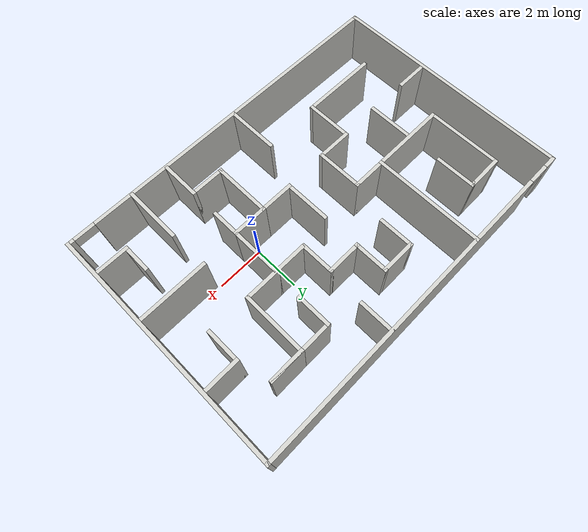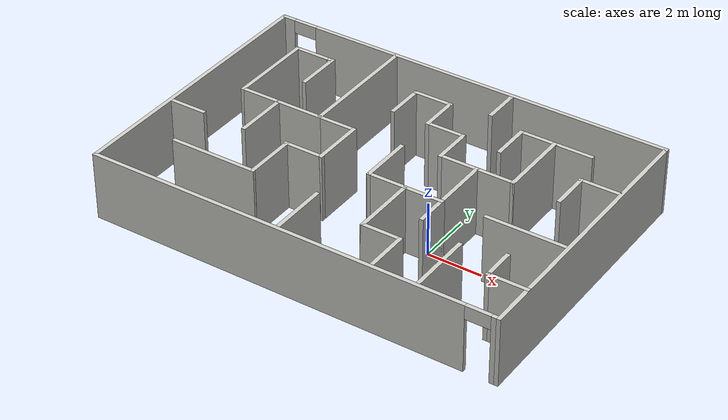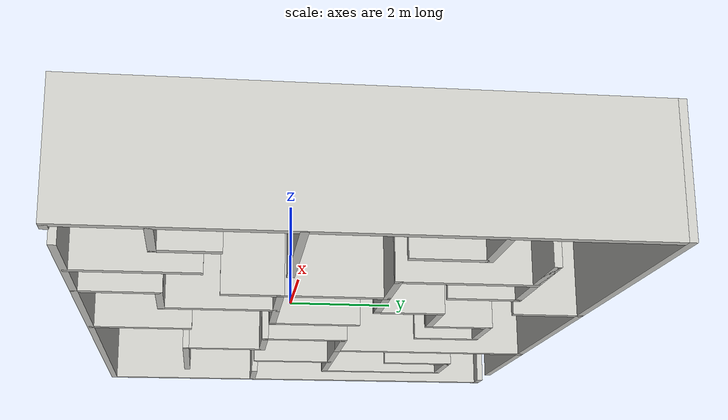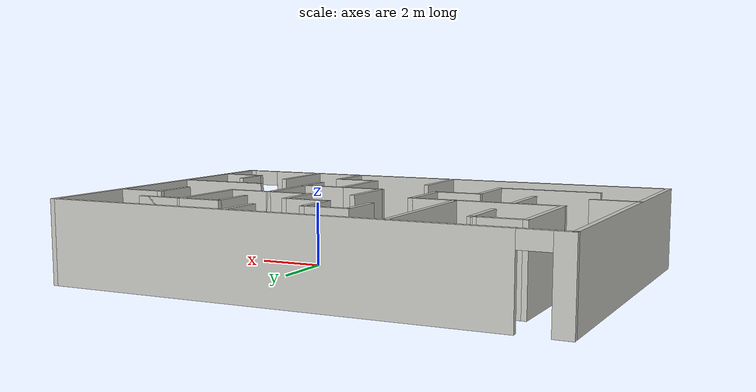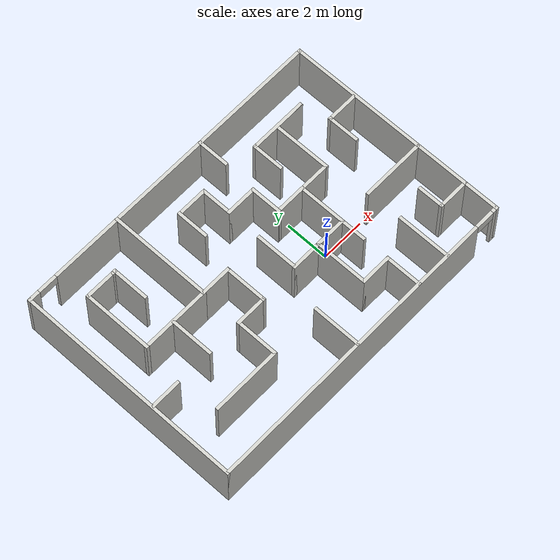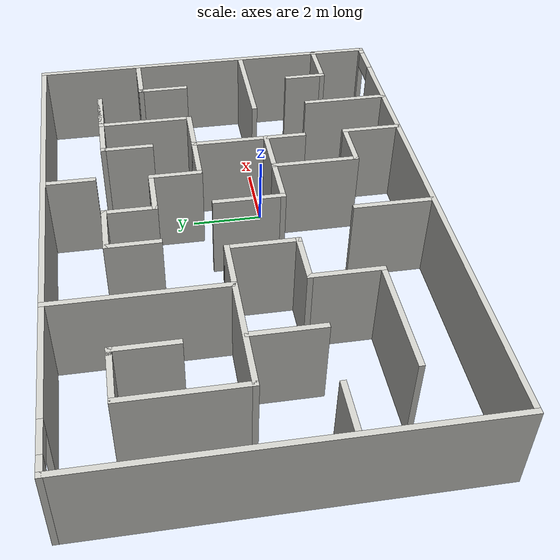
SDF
<?xml version='1.0'?>
<sdf version='1.7'>
  <model name='test_gazebo_worlds'>
    <pose>-2.43908 0.979391 0 0 -0 0</pose>
    <link name='Wall_21'>
      <collision name='Wall_21_Collision'>
        <geometry>
          <box>
            <size>4.75 0.15 2.5</size>
          </box>
        </geometry>
        <pose>0 0 1.25 0 -0 0</pose>
      </collision>
      <visual name='Wall_21_Visual'>
        <pose>0 0 1.25 0 -0 0</pose>
        <geometry>
          <box>
            <size>4.75 0.15 2.5</size>
          </box>
        </geometry>
        <material>
          <script>
            <uri>file://media/materials/scripts/gazebo.material</uri>
            <name>Gazebo/CeilingTiled</name>
          </script>
          <ambient>0.435294 0.796078 0.67451 1</ambient>
        </material>
        <meta>
          <layer>0</layer>
        </meta>
      </visual>
      <pose>-2.81689 2.87409 0 0 -0 -1.5708</pose>
    </link>
    <link name='Wall_28'>
      <collision name='Wall_28_Collision'>
        <geometry>
          <box>
            <size>3.25 0.15 2.5</size>
          </box>
        </geometry>
        <pose>0 0 1.25 0 -0 0</pose>
      </collision>
      <visual name='Wall_28_Visual'>
        <pose>0 0 1.25 0 -0 0</pose>
        <geometry>
          <box>
            <size>3.25 0.15 2.5</size>
          </box>
        </geometry>
        <material>
          <script>
            <uri>file://media/materials/scripts/gazebo.material</uri>
            <name>Gazebo/CeilingTiled</name>
          </script>
          <ambient>0.435294 0.796078 0.67451 1</ambient>
        </material>
        <meta>
          <layer>0</layer>
        </meta>
      </visual>
      <pose>-4.36689 0.574087 0 0 -0 3.14159</pose>
    </link>
    <link name='Wall_30'>
      <collision name='Wall_30_Collision'>
        <geometry>
          <box>
            <size>3.25 0.15 2.5</size>
          </box>
        </geometry>
        <pose>0 0 1.25 0 -0 0</pose>
      </collision>
      <visual name='Wall_30_Visual'>
        <pose>0 0 1.25 0 -0 0</pose>
        <geometry>
          <box>
            <size>3.25 0.15 2.5</size>
          </box>
        </geometry>
        <material>
          <script>
            <uri>file://media/materials/scripts/gazebo.material</uri>
            <name>Gazebo/CeilingTiled</name>
          </script>
          <ambient>0.435294 0.796078 0.67451 1</ambient>
        </material>
        <meta>
          <layer>0</layer>
        </meta>
      </visual>
      <pose>-5.91689 2.12409 0 0 -0 1.5708</pose>
    </link>
    <link name='Wall_31'>
      <collision name='Wall_31_Collision'>
        <geometry>
          <box>
            <size>1.5 0.15 2.5</size>
          </box>
        </geometry>
        <pose>0 0 1.25 0 -0 0</pose>
      </collision>
      <visual name='Wall_31_Visual'>
        <pose>0 0 1.25 0 -0 0</pose>
        <geometry>
          <box>
            <size>1.5 0.15 2.5</size>
          </box>
        </geometry>
        <material>
          <script>
            <uri>file://media/materials/scripts/gazebo.material</uri>
            <name>Gazebo/CeilingTiled</name>
          </script>
          <ambient>0.435294 0.796078 0.67451 1</ambient>
        </material>
        <meta>
          <layer>0</layer>
        </meta>
      </visual>
      <pose>-5.24189 3.67409 0 0 -0 0</pose>
    </link>
    <link name='Wall_32'>
      <collision name='Wall_32_Collision'>
        <geometry>
          <box>
            <size>0.25 0.15 2.5</size>
          </box>
        </geometry>
        <pose>0 0 1.25 0 -0 0</pose>
      </collision>
      <visual name='Wall_32_Visual'>
        <pose>0 0 1.25 0 -0 0</pose>
        <geometry>
          <box>
            <size>0.25 0.15 2.5</size>
          </box>
        </geometry>
        <material>
          <script>
            <uri>file://media/materials/scripts/gazebo.material</uri>
            <name>Gazebo/CeilingTiled</name>
          </script>
          <ambient>0.435294 0.796078 0.67451 1</ambient>
        </material>
        <meta>
          <layer>0</layer>
        </meta>
      </visual>
      <pose>-4.51689 3.67409 0 0 -0 0</pose>
    </link>
    <link name='Wall_33'>
      <collision name='Wall_33_Collision'>
        <geometry>
          <box>
            <size>1.75 0.15 2.5</size>
          </box>
        </geometry>
        <pose>0 0 1.25 0 -0 0</pose>
      </collision>
      <visual name='Wall_33_Visual'>
        <pose>0 0 1.25 0 -0 0</pose>
        <geometry>
          <box>
            <size>1.75 0.15 2.5</size>
          </box>
        </geometry>
        <material>
          <script>
            <uri>file://media/materials/scripts/gazebo.material</uri>
            <name>Gazebo/CeilingTiled</name>
          </script>
          <ambient>0.435294 0.796078 0.67451 1</ambient>
        </material>
        <meta>
          <layer>0</layer>
        </meta>
      </visual>
      <pose>-4.46689 2.87409 0 0 -0 -1.5708</pose>
    </link>
    <link name='Wall_35'>
      <collision name='Wall_35_Collision'>
        <geometry>
          <box>
            <size>2 0.15 2.5</size>
          </box>
        </geometry>
        <pose>0 0 1.25 0 -0 0</pose>
      </collision>
      <visual name='Wall_35_Visual'>
        <pose>0 0 1.25 0 -0 0</pose>
        <geometry>
          <box>
            <size>2 0.15 2.5</size>
          </box>
        </geometry>
        <material>
          <script>
            <uri>file://media/materials/scripts/gazebo.material</uri>
            <name>Gazebo/CeilingTiled</name>
          </script>
          <ambient>0.435294 0.796078 0.67451 1</ambient>
        </material>
        <meta>
          <layer>0</layer>
        </meta>
      </visual>
      <pose>-4.47845 -0.40327 0 0 -0 -1.5708</pose>
    </link>
    <link name='Wall_37'>
      <collision name='Wall_37_Collision'>
        <geometry>
          <box>
            <size>1.5 0.15 2.5</size>
          </box>
        </geometry>
        <pose>0 0 1.25 0 -0 0</pose>
      </collision>
      <visual name='Wall_37_Visual'>
        <pose>0 0 1.25 0 -0 0</pose>
        <geometry>
          <box>
            <size>1.5 0.15 2.5</size>
          </box>
        </geometry>
        <material>
          <script>
            <uri>file://media/materials/scripts/gazebo.material</uri>
            <name>Gazebo/CeilingTiled</name>
          </script>
          <ambient>0.435294 0.796078 0.67451 1</ambient>
        </material>
        <meta>
          <layer>0</layer>
        </meta>
      </visual>
      <pose>-6.8717 -1.30845 0 0 -0 0</pose>
    </link>
    <link name='Wall_39'>
      <collision name='Wall_39_Collision'>
        <geometry>
          <box>
            <size>1.5 0.15 2.5</size>
          </box>
        </geometry>
        <pose>0 0 1.25 0 -0 0</pose>
      </collision>
      <visual name='Wall_39_Visual'>
        <pose>0 0 1.25 0 -0 0</pose>
        <geometry>
          <box>
            <size>1.5 0.15 2.5</size>
          </box>
        </geometry>
        <material>
          <script>
            <uri>file://media/materials/scripts/gazebo.material</uri>
            <name>Gazebo/CeilingTiled</name>
          </script>
          <ambient>0.435294 0.796078 0.67451 1</ambient>
        </material>
        <meta>
          <layer>0</layer>
        </meta>
      </visual>
      <pose>-0.993049 2.90802 0 0 -0 1.5708</pose>
    </link>
    <link name='Wall_4'>
      <collision name='Wall_4_Collision'>
        <geometry>
          <box>
            <size>10.5 0.15 2.5</size>
          </box>
        </geometry>
        <pose>0 0 1.25 0 -0 0</pose>
      </collision>
      <visual name='Wall_4_Visual'>
        <pose>0 0 1.25 0 -0 0</pose>
        <geometry>
          <box>
            <size>10.5 0.15 2.5</size>
          </box>
        </geometry>
        <material>
          <script>
            <uri>file://media/materials/scripts/gazebo.material</uri>
            <name>Gazebo/CeilingTiled</name>
          </script>
          <ambient>0.435294 0.796078 0.67451 1</ambient>
        </material>
        <meta>
          <layer>0</layer>
        </meta>
      </visual>
      <pose>-7.55 -0 0 0 -0 -1.5708</pose>
    </link>
    <link name='Wall_40'>
      <collision name='Wall_40_Collision'>
        <geometry>
          <box>
            <size>1.5 0.15 2.5</size>
          </box>
        </geometry>
        <pose>0 0 1.25 0 -0 0</pose>
      </collision>
      <visual name='Wall_40_Visual'>
        <pose>0 0 1.25 0 -0 0</pose>
        <geometry>
          <box>
            <size>1.5 0.15 2.5</size>
          </box>
        </geometry>
        <material>
          <script>
            <uri>file://media/materials/scripts/gazebo.material</uri>
            <name>Gazebo/CeilingTiled</name>
          </script>
          <ambient>0.435294 0.796078 0.67451 1</ambient>
        </material>
        <meta>
          <layer>0</layer>
        </meta>
      </visual>
      <pose>-0.318049 3.58302 0 0 -0 0</pose>
    </link>
    <link name='Wall_41'>
      <collision name='Wall_41_Collision'>
        <geometry>
          <box>
            <size>1.5 0.15 2.5</size>
          </box>
        </geometry>
        <pose>0 0 1.25 0 -0 0</pose>
      </collision>
      <visual name='Wall_41_Visual'>
        <pose>0 0 1.25 0 -0 0</pose>
        <geometry>
          <box>
            <size>1.5 0.15 2.5</size>
          </box>
        </geometry>
        <material>
          <script>
            <uri>file://media/materials/scripts/gazebo.material</uri>
            <name>Gazebo/CeilingTiled</name>
          </script>
          <ambient>0.435294 0.796078 0.67451 1</ambient>
        </material>
        <meta>
          <layer>0</layer>
        </meta>
      </visual>
      <pose>0.356951 2.90802 0 0 -0 -1.5708</pose>
    </link>
    <link name='Wall_42'>
      <collision name='Wall_42_Collision'>
        <geometry>
          <box>
            <size>1.5 0.15 2.5</size>
          </box>
        </geometry>
        <pose>0 0 1.25 0 -0 0</pose>
      </collision>
      <visual name='Wall_42_Visual'>
        <pose>0 0 1.25 0 -0 0</pose>
        <geometry>
          <box>
            <size>1.5 0.15 2.5</size>
          </box>
        </geometry>
        <material>
          <script>
            <uri>file://media/materials/scripts/gazebo.material</uri>
            <name>Gazebo/CeilingTiled</name>
          </script>
          <ambient>0.435294 0.796078 0.67451 1</ambient>
        </material>
        <meta>
          <layer>0</layer>
        </meta>
      </visual>
      <pose>1.03195 2.23302 0 0 -0 0</pose>
    </link>
    <link name='Wall_43'>
      <collision name='Wall_43_Collision'>
        <geometry>
          <box>
            <size>1.5 0.15 2.5</size>
          </box>
        </geometry>
        <pose>0 0 1.25 0 -0 0</pose>
      </collision>
      <visual name='Wall_43_Visual'>
        <pose>0 0 1.25 0 -0 0</pose>
        <geometry>
          <box>
            <size>1.5 0.15 2.5</size>
          </box>
        </geometry>
        <material>
          <script>
            <uri>file://media/materials/scripts/gazebo.material</uri>
            <name>Gazebo/CeilingTiled</name>
          </script>
          <ambient>0.862745 0.541176 0.866667 1</ambient>
        </material>
        <meta>
          <layer>0</layer>
        </meta>
      </visual>
      <pose>1.70695 1.55802 0 0 -0 -1.5708</pose>
    </link>
    <link name='Wall_44'>
      <collision name='Wall_44_Collision'>
        <geometry>
          <box>
            <size>1.5 0.15 2.5</size>
          </box>
        </geometry>
        <pose>0 0 1.25 0 -0 0</pose>
      </collision>
      <visual name='Wall_44_Visual'>
        <pose>0 0 1.25 0 -0 0</pose>
        <geometry>
          <box>
            <size>1.5 0.15 2.5</size>
          </box>
        </geometry>
        <material>
          <script>
            <uri>file://media/materials/scripts/gazebo.material</uri>
            <name>Gazebo/CeilingTiled</name>
          </script>
          <ambient>0.862745 0.541176 0.866667 1</ambient>
        </material>
        <meta>
          <layer>0</layer>
        </meta>
      </visual>
      <pose>2.38195 0.88302 0 0 -0 0</pose>
    </link>
    <link name='Wall_45'>
      <collision name='Wall_45_Collision'>
        <geometry>
          <box>
            <size>2.25 0.15 2.5</size>
          </box>
        </geometry>
        <pose>0 0 1.25 0 -0 0</pose>
      </collision>
      <visual name='Wall_45_Visual'>
        <pose>0 0 1.25 0 -0 0</pose>
        <geometry>
          <box>
            <size>2.25 0.15 2.5</size>
          </box>
        </geometry>
        <material>
          <script>
            <uri>file://media/materials/scripts/gazebo.material</uri>
            <name>Gazebo/CeilingTiled</name>
          </script>
          <ambient>0.862745 0.541176 0.866667 1</ambient>
        </material>
        <meta>
          <layer>0</layer>
        </meta>
      </visual>
      <pose>3.05695 -0.16698 0 0 -0 -1.5708</pose>
    </link>
    <link name='Wall_46'>
      <collision name='Wall_46_Collision'>
        <geometry>
          <box>
            <size>1.5 0.15 2.5</size>
          </box>
        </geometry>
        <pose>0 0 1.25 0 -0 0</pose>
      </collision>
      <visual name='Wall_46_Visual'>
        <pose>0 0 1.25 0 -0 0</pose>
        <geometry>
          <box>
            <size>1.5 0.15 2.5</size>
          </box>
        </geometry>
        <material>
          <script>
            <uri>file://media/materials/scripts/gazebo.material</uri>
            <name>Gazebo/CeilingTiled</name>
          </script>
          <ambient>0.862745 0.541176 0.866667 1</ambient>
        </material>
        <meta>
          <layer>0</layer>
        </meta>
      </visual>
      <pose>2.38195 -1.21698 0 0 -0 3.14159</pose>
    </link>
    <link name='Wall_47'>
      <collision name='Wall_47_Collision'>
        <geometry>
          <box>
            <size>2.5 0.15 2.5</size>
          </box>
        </geometry>
        <pose>0 0 1.25 0 -0 0</pose>
      </collision>
      <visual name='Wall_47_Visual'>
        <pose>0 0 1.25 0 -0 0</pose>
        <geometry>
          <box>
            <size>2.5 0.15 2.5</size>
          </box>
        </geometry>
        <material>
          <script>
            <uri>file://media/materials/scripts/gazebo.material</uri>
            <name>Gazebo/CeilingTiled</name>
          </script>
          <ambient>0.862745 0.541176 0.866667 1</ambient>
        </material>
        <meta>
          <layer>0</layer>
        </meta>
      </visual>
      <pose>1.70695 -2.39198 0 0 -0 -1.5708</pose>
    </link>
    <link name='Wall_49'>
      <collision name='Wall_49_Collision'>
        <geometry>
          <box>
            <size>1.5 0.15 2.5</size>
          </box>
        </geometry>
        <pose>0 0 1.25 0 -0 0</pose>
      </collision>
      <visual name='Wall_49_Visual'>
        <pose>0 0 1.25 0 -0 0</pose>
        <geometry>
          <box>
            <size>1.5 0.15 2.5</size>
          </box>
        </geometry>
        <material>
          <script>
            <uri>file://media/materials/scripts/gazebo.material</uri>
            <name>Gazebo/CeilingTiled</name>
          </script>
          <ambient>0.862745 0.541176 0.866667 1</ambient>
        </material>
        <meta>
          <layer>0</layer>
        </meta>
      </visual>
      <pose>1.03195 -1.21698 0 0 -0 3.14159</pose>
    </link>
    <link name='Wall_5'>
      <pose>0 -5.175 0 0 -0 0</pose>
      <visual name='Wall_5_Visual_0'>
        <pose>-0.611206 0 1.25 0 -0 0</pose>
        <geometry>
          <box>
            <size>14.0276 0.15 2.5</size>
          </box>
        </geometry>
        <material>
          <script>
            <uri>file://media/materials/scripts/gazebo.material</uri>
            <name>Gazebo/CeilingTiled</name>
          </script>
          <ambient>0.862745 0.541176 0.866667 1</ambient>
        </material>
        <meta>
          <layer>0</layer>
        </meta>
      </visual>
      <collision name='Wall_5_Collision_0'>
        <geometry>
          <box>
            <size>14.0276 0.15 2.5</size>
          </box>
        </geometry>
        <pose>-0.611206 0 1.25 0 -0 0</pose>
      </collision>
      <visual name='Wall_5_Visual_1'>
        <pose>7.46379 0 1.25 0 -0 0</pose>
        <geometry>
          <box>
            <size>0.322412 0.15 2.5</size>
          </box>
        </geometry>
        <material>
          <script>
            <uri>file://media/materials/scripts/gazebo.material</uri>
            <name>Gazebo/CeilingTiled</name>
          </script>
          <ambient>0.862745 0.541176 0.866667 1</ambient>
        </material>
        <meta>
          <layer>0</layer>
        </meta>
      </visual>
      <collision name='Wall_5_Collision_1'>
        <geometry>
          <box>
            <size>0.322412 0.15 2.5</size>
          </box>
        </geometry>
        <pose>7.46379 0 1.25 0 -0 0</pose>
      </collision>
      <visual name='Wall_5_Visual_2'>
        <pose>6.85259 0 2.25 0 -0 0</pose>
        <geometry>
          <box>
            <size>0.9 0.15 0.5</size>
          </box>
        </geometry>
        <material>
          <script>
            <uri>file://media/materials/scripts/gazebo.material</uri>
            <name>Gazebo/CeilingTiled</name>
          </script>
          <ambient>0.862745 0.541176 0.866667 1</ambient>
        </material>
        <meta>
          <layer>0</layer>
        </meta>
      </visual>
      <collision name='Wall_5_Collision_2'>
        <geometry>
          <box>
            <size>0.9 0.15 0.5</size>
          </box>
        </geometry>
        <pose>6.85259 0 2.25 0 -0 0</pose>
      </collision>
    </link>
    <link name='Wall_50'>
      <collision name='Wall_50_Collision'>
        <geometry>
          <box>
            <size>2 0.15 2.5</size>
          </box>
        </geometry>
        <pose>0 0 1.25 0 -0 0</pose>
      </collision>
      <visual name='Wall_50_Visual'>
        <pose>0 0 1.25 0 -0 0</pose>
        <geometry>
          <box>
            <size>2 0.15 2.5</size>
          </box>
        </geometry>
        <material>
          <script>
            <uri>file://media/materials/scripts/gazebo.material</uri>
            <name>Gazebo/CeilingTiled</name>
          </script>
          <ambient>0.435294 0.796078 0.67451 1</ambient>
        </material>
        <meta>
          <layer>0</layer>
        </meta>
      </visual>
      <pose>0.356951 -0.29198 0 0 -0 1.5708</pose>
    </link>
    <link name='Wall_52'>
      <collision name='Wall_52_Collision'>
        <geometry>
          <box>
            <size>1.5 0.15 2.5</size>
          </box>
        </geometry>
        <pose>0 0 1.25 0 -0 0</pose>
      </collision>
      <visual name='Wall_52_Visual'>
        <pose>0 0 1.25 0 -0 0</pose>
        <geometry>
          <box>
            <size>1.5 0.15 2.5</size>
          </box>
        </geometry>
        <material>
          <script>
            <uri>file://media/materials/scripts/gazebo.material</uri>
            <name>Gazebo/CeilingTiled</name>
          </script>
          <ambient>0.435294 0.796078 0.67451 1</ambient>
        </material>
        <meta>
          <layer>0</layer>
        </meta>
      </visual>
      <pose>-2.14189 0.574087 0 0 -0 0</pose>
    </link>
    <link name='Wall_53'>
      <collision name='Wall_53_Collision'>
        <geometry>
          <box>
            <size>2 0.15 2.5</size>
          </box>
        </geometry>
        <pose>0 0 1.25 0 -0 0</pose>
      </collision>
      <visual name='Wall_53_Visual'>
        <pose>0 0 1.25 0 -0 0</pose>
        <geometry>
          <box>
            <size>2 0.15 2.5</size>
          </box>
        </geometry>
        <material>
          <script>
            <uri>file://media/materials/scripts/gazebo.material</uri>
            <name>Gazebo/CeilingTiled</name>
          </script>
          <ambient>0.435294 0.796078 0.67451 1</ambient>
        </material>
        <meta>
          <layer>0</layer>
        </meta>
      </visual>
      <pose>-1.46689 -0.350913 0 0 -0 -1.5708</pose>
    </link>
    <link name='Wall_54'>
      <collision name='Wall_54_Collision'>
        <geometry>
          <box>
            <size>1.5 0.15 2.5</size>
          </box>
        </geometry>
        <pose>0 0 1.25 0 -0 0</pose>
      </collision>
      <visual name='Wall_54_Visual'>
        <pose>0 0 1.25 0 -0 0</pose>
        <geometry>
          <box>
            <size>1.5 0.15 2.5</size>
          </box>
        </geometry>
        <material>
          <script>
            <uri>file://media/materials/scripts/gazebo.material</uri>
            <name>Gazebo/CeilingTiled</name>
          </script>
          <ambient>0.435294 0.796078 0.67451 1</ambient>
        </material>
        <meta>
          <layer>0</layer>
        </meta>
      </visual>
      <pose>-2.14189 -1.27591 0 0 -0 3.14159</pose>
    </link>
    <link name='Wall_55'>
      <collision name='Wall_55_Collision'>
        <geometry>
          <box>
            <size>2 0.15 2.5</size>
          </box>
        </geometry>
        <pose>0 0 1.25 0 -0 0</pose>
      </collision>
      <visual name='Wall_55_Visual'>
        <pose>0 0 1.25 0 -0 0</pose>
        <geometry>
          <box>
            <size>2 0.15 2.5</size>
          </box>
        </geometry>
        <material>
          <script>
            <uri>file://media/materials/scripts/gazebo.material</uri>
            <name>Gazebo/CeilingTiled</name>
          </script>
          <ambient>0.435294 0.796078 0.67451 1</ambient>
        </material>
        <meta>
          <layer>0</layer>
        </meta>
      </visual>
      <pose>-2.81689 -2.20091 0 0 -0 -1.5708</pose>
    </link>
    <link name='Wall_56'>
      <collision name='Wall_56_Collision'>
        <geometry>
          <box>
            <size>3.25 0.15 2.5</size>
          </box>
        </geometry>
        <pose>0 0 1.25 0 -0 0</pose>
      </collision>
      <visual name='Wall_56_Visual'>
        <pose>0 0 1.25 0 -0 0</pose>
        <geometry>
          <box>
            <size>3.25 0.15 2.5</size>
          </box>
        </geometry>
        <material>
          <script>
            <uri>file://media/materials/scripts/gazebo.material</uri>
            <name>Gazebo/CeilingTiled</name>
          </script>
          <ambient>0.435294 0.796078 0.67451 1</ambient>
        </material>
        <meta>
          <layer>0</layer>
        </meta>
      </visual>
      <pose>-4.36689 -3.12591 0 0 -0 3.14159</pose>
    </link>
    <link name='Wall_58'>
      <collision name='Wall_58_Collision'>
        <geometry>
          <box>
            <size>2.25 0.15 2.5</size>
          </box>
        </geometry>
        <pose>0 0 1.25 0 -0 0</pose>
      </collision>
      <visual name='Wall_58_Visual'>
        <pose>0 0 1.25 0 -0 0</pose>
        <geometry>
          <box>
            <size>2.25 0.15 2.5</size>
          </box>
        </geometry>
        <material>
          <script>
            <uri>file://media/materials/scripts/gazebo.material</uri>
            <name>Gazebo/CeilingTiled</name>
          </script>
          <ambient>0.862745 0.541176 0.866667 1</ambient>
        </material>
        <meta>
          <layer>0</layer>
        </meta>
      </visual>
      <pose>-0.400199 -4.08572 0 0 -0 -1.5708</pose>
    </link>
    <link name='Wall_6'>
      <collision name='Wall_6_Collision'>
        <geometry>
          <box>
            <size>10.5 0.15 2.5</size>
          </box>
        </geometry>
        <pose>0 0 1.25 0 -0 0</pose>
      </collision>
      <visual name='Wall_6_Visual'>
        <pose>0 0 1.25 0 -0 0</pose>
        <geometry>
          <box>
            <size>10.5 0.15 2.5</size>
          </box>
        </geometry>
        <material>
          <script>
            <uri>file://media/materials/scripts/gazebo.material</uri>
            <name>Gazebo/CeilingTiled</name>
          </script>
          <ambient>0.862745 0.541176 0.866667 1</ambient>
        </material>
        <meta>
          <layer>0</layer>
        </meta>
      </visual>
      <pose>7.55 -0 0 0 -0 1.5708</pose>
    </link>
    <link name='Wall_60'>
      <collision name='Wall_60_Collision'>
        <geometry>
          <box>
            <size>1.5 0.15 2.5</size>
          </box>
        </geometry>
        <pose>0 0 1.25 0 -0 0</pose>
      </collision>
      <visual name='Wall_60_Visual'>
        <pose>0 0 1.25 0 -0 0</pose>
        <geometry>
          <box>
            <size>1.5 0.15 2.5</size>
          </box>
        </geometry>
        <material>
          <script>
            <uri>file://media/materials/scripts/gazebo.material</uri>
            <name>Gazebo/CeilingTiled</name>
          </script>
          <ambient>0.435294 0.796078 0.67451 1</ambient>
        </material>
        <meta>
          <layer>0</layer>
        </meta>
      </visual>
      <pose>1.82204 4.48391 0 0 -0 -1.5708</pose>
    </link>
    <link name='Wall_62'>
      <collision name='Wall_62_Collision'>
        <geometry>
          <box>
            <size>1.5 0.15 2.5</size>
          </box>
        </geometry>
        <pose>0 0 1.25 0 -0 0</pose>
      </collision>
      <visual name='Wall_62_Visual'>
        <pose>0 0 1.25 0 -0 0</pose>
        <geometry>
          <box>
            <size>1.5 0.15 2.5</size>
          </box>
        </geometry>
        <material>
          <script>
            <uri>file://media/materials/scripts/gazebo.material</uri>
            <name>Gazebo/CeilingTiled</name>
          </script>
          <ambient>0.435294 0.796078 0.67451 1</ambient>
        </material>
        <meta>
          <layer>0</layer>
        </meta>
      </visual>
      <pose>3.73195 0.88302 0 0 -0 0</pose>
    </link>
    <link name='Wall_63'>
      <collision name='Wall_63_Collision'>
        <geometry>
          <box>
            <size>2.75 0.15 2.5</size>
          </box>
        </geometry>
        <pose>0 0 1.25 0 -0 0</pose>
      </collision>
      <visual name='Wall_63_Visual'>
        <pose>0 0 1.25 0 -0 0</pose>
        <geometry>
          <box>
            <size>2.75 0.15 2.5</size>
          </box>
        </geometry>
        <material>
          <script>
            <uri>file://media/materials/scripts/gazebo.material</uri>
            <name>Gazebo/CeilingTiled</name>
          </script>
          <ambient>0.862745 0.541176 0.866667 1</ambient>
        </material>
        <meta>
          <layer>0</layer>
        </meta>
      </visual>
      <pose>4.40695 2.18302 0 0 -0 1.5708</pose>
    </link>
    <link name='Wall_64'>
      <collision name='Wall_64_Collision'>
        <geometry>
          <box>
            <size>1.5 0.15 2.5</size>
          </box>
        </geometry>
        <pose>0 0 1.25 0 -0 0</pose>
      </collision>
      <visual name='Wall_64_Visual'>
        <pose>0 0 1.25 0 -0 0</pose>
        <geometry>
          <box>
            <size>1.5 0.15 2.5</size>
          </box>
        </geometry>
        <material>
          <script>
            <uri>file://media/materials/scripts/gazebo.material</uri>
            <name>Gazebo/CeilingTiled</name>
          </script>
          <ambient>1 1 1 1</ambient>
        </material>
        <meta>
          <layer>0</layer>
        </meta>
      </visual>
      <pose>5.08195 3.48302 0 0 -0 0</pose>
    </link>
    <link name='Wall_65'>
      <collision name='Wall_65_Collision'>
        <geometry>
          <box>
            <size>2.75 0.15 2.5</size>
          </box>
        </geometry>
        <pose>0 0 1.25 0 -0 0</pose>
      </collision>
      <visual name='Wall_65_Visual'>
        <pose>0 0 1.25 0 -0 0</pose>
        <geometry>
          <box>
            <size>2.75 0.15 2.5</size>
          </box>
        </geometry>
        <material>
          <script>
            <uri>file://media/materials/scripts/gazebo.material</uri>
            <name>Gazebo/CeilingTiled</name>
          </script>
          <ambient>0.862745 0.541176 0.866667 1</ambient>
        </material>
        <meta>
          <layer>0</layer>
        </meta>
      </visual>
      <pose>4.45695 3.48302 0 0 -0 3.14159</pose>
    </link>
    <link name='Wall_66'>
      <collision name='Wall_66_Collision'>
        <geometry>
          <box>
            <size>1.5 0.15 2.5</size>
          </box>
        </geometry>
        <pose>0 0 1.25 0 -0 0</pose>
      </collision>
      <visual name='Wall_66_Visual'>
        <pose>0 0 1.25 0 -0 0</pose>
        <geometry>
          <box>
            <size>1.5 0.15 2.5</size>
          </box>
        </geometry>
        <material>
          <script>
            <uri>file://media/materials/scripts/gazebo.material</uri>
            <name>Gazebo/CeilingTiled</name>
          </script>
          <ambient>0.862745 0.541176 0.866667 1</ambient>
        </material>
        <meta>
          <layer>0</layer>
        </meta>
      </visual>
      <pose>3.15695 2.80802 0 0 -0 -1.5708</pose>
    </link>
    <link name='Wall_68'>
      <collision name='Wall_68_Collision'>
        <geometry>
          <box>
            <size>1.5 0.15 2.5</size>
          </box>
        </geometry>
        <pose>0 0 1.25 0 -0 0</pose>
      </collision>
      <visual name='Wall_68_Visual'>
        <pose>0 0 1.25 0 -0 0</pose>
        <geometry>
          <box>
            <size>1.5 0.15 2.5</size>
          </box>
        </geometry>
        <material>
          <script>
            <uri>file://media/materials/scripts/gazebo.material</uri>
            <name>Gazebo/CeilingTiled</name>
          </script>
          <ambient>0.862745 0.541176 0.866667 1</ambient>
        </material>
        <meta>
          <layer>0</layer>
        </meta>
      </visual>
      <pose>2.38195 -3.56698 0 0 -0 0</pose>
    </link>
    <link name='Wall_7'>
      <pose>0 5.175 0 0 -0 3.14159</pose>
      <visual name='Wall_7_Visual_0'>
        <pose>-0.72897 0 1.25 0 -0 0</pose>
        <geometry>
          <box>
            <size>13.7921 0.15 2.5</size>
          </box>
        </geometry>
        <material>
          <script>
            <uri>file://media/materials/scripts/gazebo.material</uri>
            <name>Gazebo/CeilingTiled</name>
          </script>
          <ambient>0.435294 0.796078 0.67451 1</ambient>
        </material>
        <meta>
          <layer>0</layer>
        </meta>
      </visual>
      <collision name='Wall_7_Collision_0'>
        <geometry>
          <box>
            <size>13.7921 0.15 2.5</size>
          </box>
        </geometry>
        <pose>-0.72897 0 1.25 0 -0 0</pose>
      </collision>
      <visual name='Wall_7_Visual_1'>
        <pose>7.34603 0 1.25 0 -0 0</pose>
        <geometry>
          <box>
            <size>0.55794 0.15 2.5</size>
          </box>
        </geometry>
        <material>
          <script>
            <uri>file://media/materials/scripts/gazebo.material</uri>
            <name>Gazebo/CeilingTiled</name>
          </script>
          <ambient>0.435294 0.796078 0.67451 1</ambient>
        </material>
        <meta>
          <layer>0</layer>
        </meta>
      </visual>
      <collision name='Wall_7_Collision_1'>
        <geometry>
          <box>
            <size>0.55794 0.15 2.5</size>
          </box>
        </geometry>
        <pose>7.34603 0 1.25 0 -0 0</pose>
      </collision>
      <visual name='Wall_7_Visual_2'>
        <pose>6.61706 0 2.25 0 -0 0</pose>
        <geometry>
          <box>
            <size>0.9 0.15 0.5</size>
          </box>
        </geometry>
        <material>
          <script>
            <uri>file://media/materials/scripts/gazebo.material</uri>
            <name>Gazebo/CeilingTiled</name>
          </script>
          <ambient>0.435294 0.796078 0.67451 1</ambient>
        </material>
        <meta>
          <layer>0</layer>
        </meta>
      </visual>
      <collision name='Wall_7_Collision_2'>
        <geometry>
          <box>
            <size>0.9 0.15 0.5</size>
          </box>
        </geometry>
        <pose>6.61706 0 2.25 0 -0 0</pose>
      </collision>
    </link>
    <link name='Wall_71'>
      <collision name='Wall_71_Collision'>
        <geometry>
          <box>
            <size>1.75 0.15 2.5</size>
          </box>
        </geometry>
        <pose>0 0 1.25 0 -0 0</pose>
      </collision>
      <visual name='Wall_71_Visual'>
        <pose>0 0 1.25 0 -0 0</pose>
        <geometry>
          <box>
            <size>1.75 0.15 2.5</size>
          </box>
        </geometry>
        <material>
          <script>
            <uri>file://media/materials/scripts/gazebo.material</uri>
            <name>Gazebo/CeilingTiled</name>
          </script>
          <ambient>0.862745 0.541176 0.866667 1</ambient>
        </material>
        <meta>
          <layer>0</layer>
        </meta>
      </visual>
      <pose>3.05695 -4.36698 0 0 -0 -1.5708</pose>
    </link>
    <link name='Wall_73'>
      <collision name='Wall_73_Collision'>
        <geometry>
          <box>
            <size>1.5 0.15 2.5</size>
          </box>
        </geometry>
        <pose>0 0 1.25 0 -0 0</pose>
      </collision>
      <visual name='Wall_73_Visual'>
        <pose>0 0 1.25 0 -0 0</pose>
        <geometry>
          <box>
            <size>1.5 0.15 2.5</size>
          </box>
        </geometry>
        <material>
          <script>
            <uri>file://media/materials/scripts/gazebo.material</uri>
            <name>Gazebo/CeilingTiled</name>
          </script>
          <ambient>0.862745 0.541176 0.866667 1</ambient>
        </material>
        <meta>
          <layer>0</layer>
        </meta>
      </visual>
      <pose>6.77804 2.18627 0 0 -0 0</pose>
    </link>
    <link name='Wall_75'>
      <collision name='Wall_75_Collision'>
        <geometry>
          <box>
            <size>1.5 0.15 2.5</size>
          </box>
        </geometry>
        <pose>0 0 1.25 0 -0 0</pose>
      </collision>
      <visual name='Wall_75_Visual'>
        <pose>0 0 1.25 0 -0 0</pose>
        <geometry>
          <box>
            <size>1.5 0.15 2.5</size>
          </box>
        </geometry>
        <material>
          <script>
            <uri>file://media/materials/scripts/gazebo.material</uri>
            <name>Gazebo/CeilingTiled</name>
          </script>
          <ambient>0.862745 0.541176 0.866667 1</ambient>
        </material>
        <meta>
          <layer>0</layer>
        </meta>
      </visual>
      <pose>6.10304 1.51127 0 0 -0 -1.5708</pose>
    </link>
    <link name='Wall_77'>
      <collision name='Wall_77_Collision'>
        <geometry>
          <box>
            <size>3 0.15 2.5</size>
          </box>
        </geometry>
        <pose>0 0 1.25 0 -0 0</pose>
      </collision>
      <visual name='Wall_77_Visual'>
        <pose>0 0 1.25 0 -0 0</pose>
        <geometry>
          <box>
            <size>3 0.15 2.5</size>
          </box>
        </geometry>
        <material>
          <script>
            <uri>file://media/materials/scripts/gazebo.material</uri>
            <name>Gazebo/CeilingTiled</name>
          </script>
          <ambient>0.862745 0.541176 0.866667 1</ambient>
        </material>
        <meta>
          <layer>0</layer>
        </meta>
      </visual>
      <pose>6.07636 -1.13684 0 0 -0 0</pose>
    </link>
    <link name='Wall_81'>
      <collision name='Wall_81_Collision'>
        <geometry>
          <box>
            <size>1.25 0.15 2.5</size>
          </box>
        </geometry>
        <pose>0 0 1.25 0 -0 0</pose>
      </collision>
      <visual name='Wall_81_Visual'>
        <pose>0 0 1.25 0 -0 0</pose>
        <geometry>
          <box>
            <size>1.25 0.15 2.5</size>
          </box>
        </geometry>
        <material>
          <script>
            <uri>file://media/materials/scripts/gazebo.material</uri>
            <name>Gazebo/CeilingTiled</name>
          </script>
          <ambient>0.862745 0.541176 0.866667 1</ambient>
        </material>
        <meta>
          <layer>0</layer>
        </meta>
      </visual>
      <pose>3.05695 -1.76698 0 0 -0 -1.5708</pose>
    </link>
    <link name='Wall_83'>
      <collision name='Wall_83_Collision'>
        <geometry>
          <box>
            <size>2.5 0.15 2.5</size>
          </box>
        </geometry>
        <pose>0 0 1.25 0 -0 0</pose>
      </collision>
      <visual name='Wall_83_Visual'>
        <pose>0 0 1.25 0 -0 0</pose>
        <geometry>
          <box>
            <size>2.5 0.15 2.5</size>
          </box>
        </geometry>
        <material>
          <script>
            <uri>file://media/materials/scripts/gazebo.material</uri>
            <name>Gazebo/CeilingTiled</name>
          </script>
          <ambient>0.862745 0.541176 0.866667 1</ambient>
        </material>
        <meta>
          <layer>0</layer>
        </meta>
      </visual>
      <pose>4.69869 -3.96706 0 0 -0 1.5708</pose>
    </link>
    <link name='Wall_85'>
      <collision name='Wall_85_Collision'>
        <geometry>
          <box>
            <size>1.5 0.15 2.5</size>
          </box>
        </geometry>
        <pose>0 0 1.25 0 -0 0</pose>
      </collision>
      <visual name='Wall_85_Visual'>
        <pose>0 0 1.25 0 -0 0</pose>
        <geometry>
          <box>
            <size>1.5 0.15 2.5</size>
          </box>
        </geometry>
        <material>
          <script>
            <uri>file://media/materials/scripts/gazebo.material</uri>
            <name>Gazebo/CeilingTiled</name>
          </script>
          <ambient>0.862745 0.541176 0.866667 1</ambient>
        </material>
        <meta>
          <layer>0</layer>
        </meta>
      </visual>
      <pose>6.85708 -3.56796 0 0 -0 3.14159</pose>
    </link>
    <link name='Wall_86'>
      <collision name='Wall_86_Collision'>
        <geometry>
          <box>
            <size>1.25 0.15 2.5</size>
          </box>
        </geometry>
        <pose>0 0 1.25 0 -0 0</pose>
      </collision>
      <visual name='Wall_86_Visual'>
        <pose>0 0 1.25 0 -0 0</pose>
        <geometry>
          <box>
            <size>1.25 0.15 2.5</size>
          </box>
        </geometry>
        <material>
          <script>
            <uri>file://media/materials/scripts/gazebo.material</uri>
            <name>Gazebo/CeilingTiled</name>
          </script>
          <ambient>0.862745 0.541176 0.866667 1</ambient>
        </material>
        <meta>
          <layer>0</layer>
        </meta>
      </visual>
      <pose>6.18208 -3.01796 0 0 -0 1.5708</pose>
    </link>
    <static>1</static>
  </model>
</sdf>
